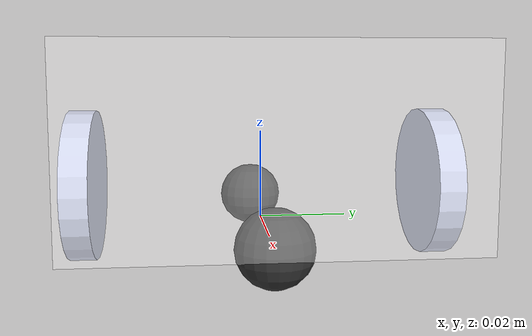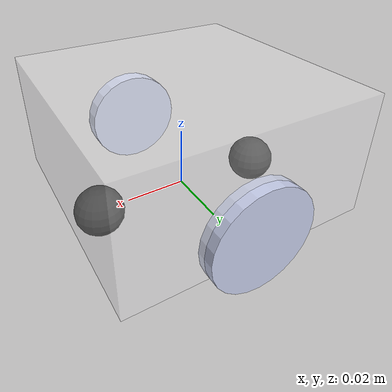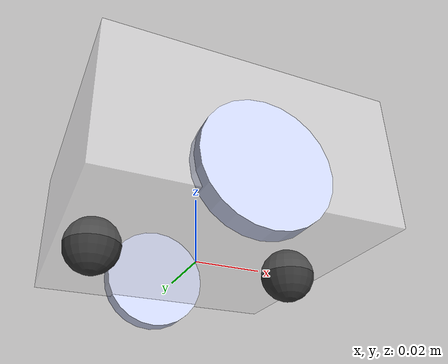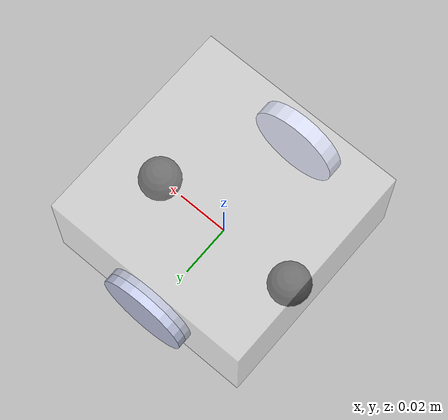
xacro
<?xml version="1.0" encoding="utf-8"?>
<robot name="obstacle_bot" xmlns:xacro="http://www.ros.org/wiki/xacro">

  <!-- Properties -->
  <xacro:property name="PI" value="3.14159265359"/>

  <!-- Base properties -->
  <xacro:property name="base_mass" value="0.2"/>
  <xacro:property name="base_length" value="0.08"/>
  <xacro:property name="base_width" value="0.08"/>
  <xacro:property name="base_height" value="0.04"/>

  <!-- Wheel properties -->
  <xacro:property name="wheel_radius" value="0.017"/>
  <xacro:property name="wheel_length" value="0.006"/>
  <xacro:property name="wheel_mass" value="0.05"/>
  <xacro:property name="wheel_offset_y" value="0.0403"/>
  <xacro:property name="wheel_offset_z" value="0.008"/>

  <!-- Caster wheel properties -->
  <xacro:property name="caster_radius" value="0.008"/>
  <xacro:property name="caster_mass" value="0.01"/>
  <xacro:property name="caster_offset_x" value="0.03"/>

  <!-- Joint dynamics -->
  <xacro:property name="wheel_damping" value="0.1"/>
  <xacro:property name="wheel_friction" value="0.1"/>

  <!-- Material definitions -->
  <material name="white_transparent">
    <color rgba="1 1 1 0.3"/>
  </material>

  <material name="light_blue">
    <color rgba="0.792156862745098 0.819607843137255 0.933333333333333 1"/>
  </material>

  <material name="dark_gray">
    <color rgba="0.2 0.2 0.2 1"/>
  </material>

  <!-- Macro for inertial block -->
  <xacro:macro name="inertial_box" params="mass length width height *origin">
    <inertial>
      <xacro:insert_block name="origin"/>
      <mass value="${mass}"/>
      <inertia
        ixx="${(1/12) * mass * (height*height + width*width)}"
        ixy="0"
        ixz="0"
        iyy="${(1/12) * mass * (height*height + length*length)}"
        iyz="0"
        izz="${(1/12) * mass * (length*length + width*width)}"/>
    </inertial>
  </xacro:macro>

  <xacro:macro name="inertial_cylinder" params="mass radius length *origin">
    <inertial>
      <xacro:insert_block name="origin"/>
      <mass value="${mass}"/>
      <inertia
        ixx="${(1/12) * mass * (3*radius*radius + length*length)}"
        ixy="0"
        ixz="0"
        iyy="${(1/12) * mass * (3*radius*radius + length*length)}"
        iyz="0"
        izz="${(1/2) * mass * radius * radius}"/>
    </inertial>
  </xacro:macro>

  <xacro:macro name="inertial_sphere" params="mass radius *origin">
    <inertial>
      <xacro:insert_block name="origin"/>
      <mass value="${mass}"/>
      <inertia
        ixx="${(2/5) * mass * radius * radius}"
        ixy="0"
        ixz="0"
        iyy="${(2/5) * mass * radius * radius}"
        iyz="0"
        izz="${(2/5) * mass * radius * radius}"/>
    </inertial>
  </xacro:macro>

  <!-- Macro for wheel link -->
  <xacro:macro name="wheel_link" params="name color">
    <link name="${name}">
      <xacro:inertial_cylinder mass="${wheel_mass}" radius="${wheel_radius}" length="${wheel_length}">
        <origin xyz="0 0 0" rpy="0 0 0"/>
      </xacro:inertial_cylinder>

      <visual>
        <origin xyz="0 0 0" rpy="0 0 0"/>
        <geometry>
          <cylinder radius="${wheel_radius}" length="${wheel_length}"/>
        </geometry>
        <material name="${color}"/>
      </visual>

      <collision>
        <origin xyz="0 0 0" rpy="0 0 0"/>
        <geometry>
          <cylinder radius="${wheel_radius}" length="${wheel_length}"/>
        </geometry>
      </collision>
    </link>
  </xacro:macro>

  <!-- Macro for caster wheel -->
  <xacro:macro name="caster_wheel" params="name x_offset">
    <link name="${name}">
      <xacro:inertial_sphere mass="${caster_mass}" radius="${caster_radius}">
        <origin xyz="0 0 0" rpy="0 0 0"/>
      </xacro:inertial_sphere>

      <visual>
        <origin xyz="0 0 0" rpy="0 0 0"/>
        <geometry>
          <sphere radius="${caster_radius}"/>
        </geometry>
        <material name="dark_gray"/>
      </visual>

      <collision>
        <origin xyz="0 0 0" rpy="0 0 0"/>
        <geometry>
          <sphere radius="${caster_radius}"/>
        </geometry>
      </collision>
    </link>

    <joint name="${name}_joint" type="fixed">
      <origin xyz="${x_offset} 0 0" rpy="0 0 0"/>
      <parent link="Base"/>
      <child link="${name}"/>
    </joint>
  </xacro:macro>

  <xacro:include filename="$(find obstacle_bot_cpp)/model/obstacle_bot.gazebo"/>

  <!-- Base Link -->
  <link name="Base">
    <xacro:inertial_box mass="${base_mass}" length="${base_length}" width="${base_width}" height="${base_height}">
      <origin xyz="0 0 ${base_height/2}" rpy="0 0 0"/>
    </xacro:inertial_box>

    <visual>
      <origin xyz="0 0 ${base_height/2}" rpy="0 0 0"/>
      <geometry>
        <box size="${base_length} ${base_width} ${base_height}"/>
      </geometry>
      <material name="white_transparent"/>
    </visual>

    <collision>
      <origin xyz="0 0 ${base_height/2}" rpy="0 0 0"/>
      <geometry>
        <box size="${base_length} ${base_width} ${base_height}"/>
      </geometry>
    </collision>
  </link>

  <!-- Right Wheel -->
  <xacro:wheel_link name="Right_wheel" color="light_blue"/>

  <joint name="Right_wheel_joint" type="continuous">
    <origin xyz="0 -${wheel_offset_y} ${wheel_offset_z}" rpy="${PI/2} 0 0"/>
    <parent link="Base"/>
    <child link="Right_wheel"/>
    <axis xyz="0 0 1"/>
    <dynamics damping="${wheel_damping}" friction="${wheel_friction}"/>
  </joint>

  <!-- Left Wheel -->
  <xacro:wheel_link name="Left_wheel" color="light_blue"/>

  <joint name="Left_wheel_joint" type="continuous">
    <origin xyz="0 ${wheel_offset_y} ${wheel_offset_z}" rpy="${PI/2} 0 0"/>
    <parent link="Base"/>
    <child link="Left_wheel"/>
    <axis xyz="0 0 1"/>
    <dynamics damping="${wheel_damping}" friction="${wheel_friction}"/>
  </joint>

  <!-- Front Caster Wheel -->
  <xacro:caster_wheel name="Front_caster_wheel" x_offset="${caster_offset_x}"/>

  <!-- Rear Caster Wheel -->
  <xacro:caster_wheel name="Rear_caster_wheel" x_offset="${-caster_offset_x}"/>

</robot>
